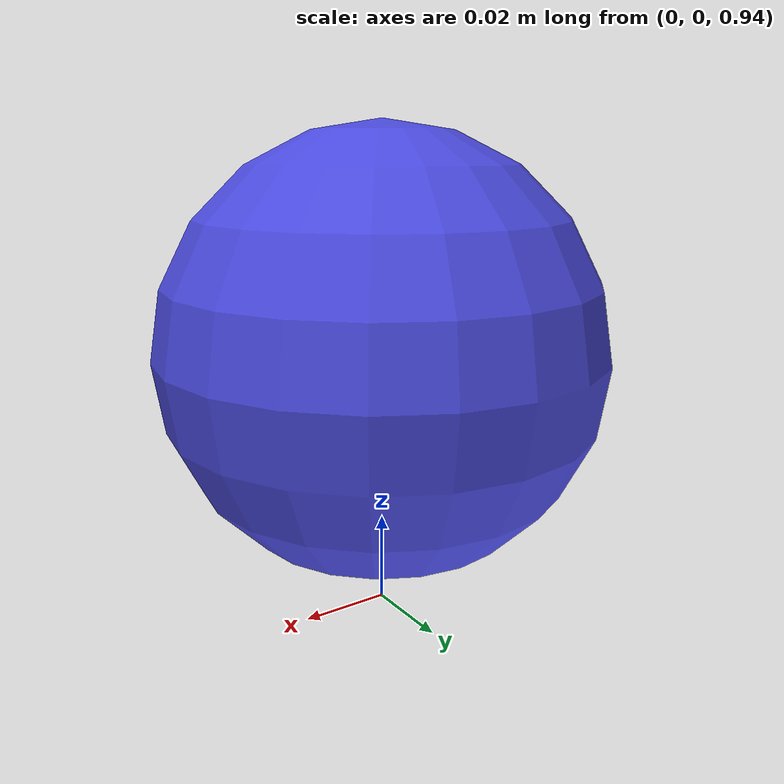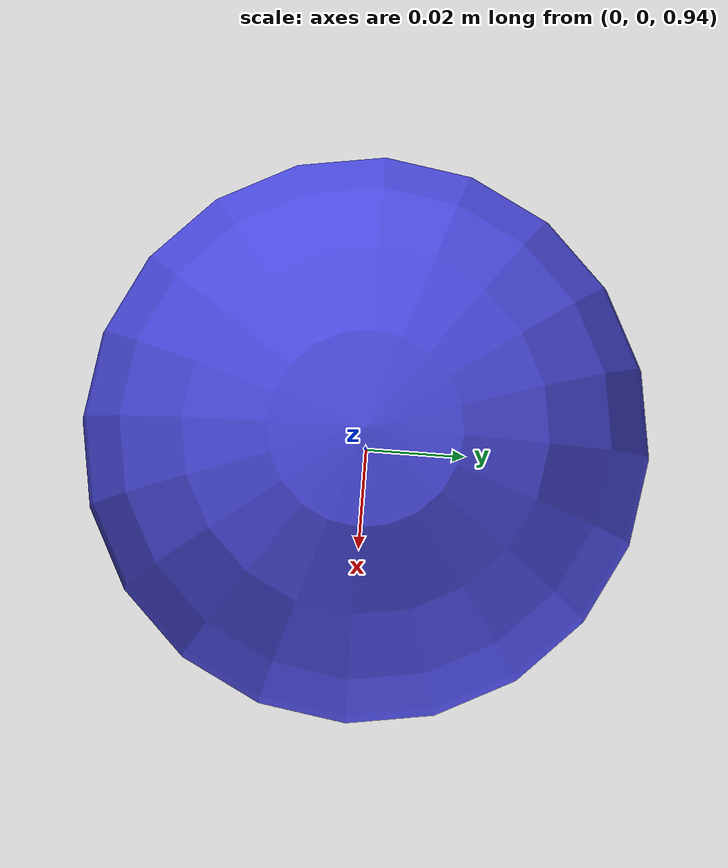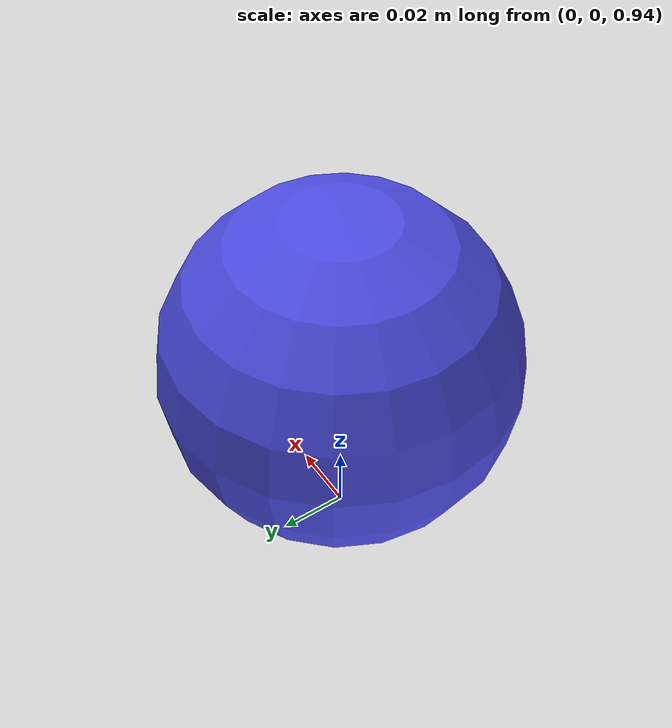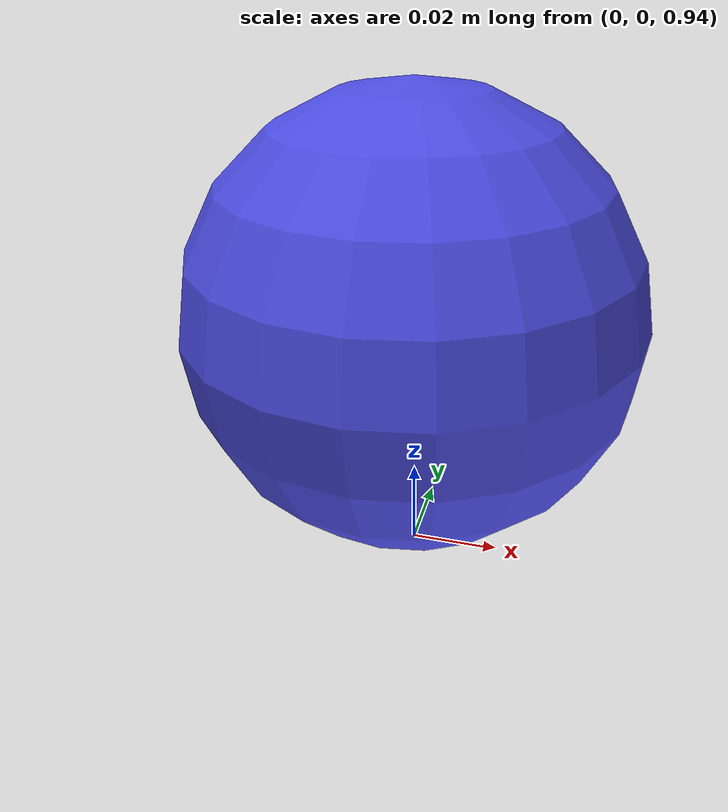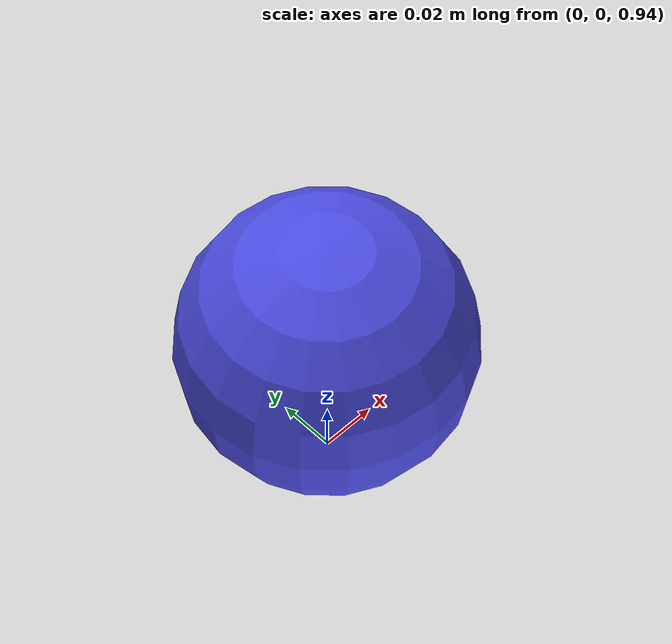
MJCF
<?xml version='1.0' encoding='utf-8'?>
<mujoco model="humanoid_263"><compiler angle="radian" coordinate="local" /><default><joint limited="false" damping="1" /><geom type="sphere" size="0.02" /></default><asset><texture name="tex" type="2d" builtin="checker" width="100" height="100" /><material name="mat" texture="tex" reflectance="0.2" /></asset><worldbody><body name="root" pos="0 0 1"><joint name="root_tx" type="slide" axis="1 0 0" /><joint name="root_ty" type="slide" axis="0 1 0" /><joint name="root_tz" type="slide" axis="0 0 1" /><geom name="root_geom" type="sphere" size="0.05" rgba="0.3 0.3 0.9 1" /><body name="j0" pos="0 0 0"><joint name="j0_x" type="slide" axis="1 0 0" /><joint name="j0_y" type="slide" axis="0 1 0" /><joint name="j0_z" type="slide" axis="0 0 1" /><geom name="j0_geom" type="sphere" size="0.02" rgba="0.8 0.3 0.3 1" /><body name="j1" pos="0 0 0"><joint name="j1_x" type="slide" axis="1 0 0" /><joint name="j1_y" type="slide" axis="0 1 0" /><joint name="j1_z" type="slide" axis="0 0 1" /><geom name="j1_geom" type="sphere" size="0.02" rgba="0.8 0.3 0.3 1" /><body name="j2" pos="0 0 0"><joint name="j2_x" type="slide" axis="1 0 0" /><joint name="j2_y" type="slide" axis="0 1 0" /><joint name="j2_z" type="slide" axis="0 0 1" /><geom name="j2_geom" type="sphere" size="0.02" rgba="0.8 0.3 0.3 1" /><body name="j3" pos="0 0 0"><joint name="j3_x" type="slide" axis="1 0 0" /><joint name="j3_y" type="slide" axis="0 1 0" /><joint name="j3_z" type="slide" axis="0 0 1" /><geom name="j3_geom" type="sphere" size="0.02" rgba="0.8 0.3 0.3 1" /><body name="j4" pos="0 0 0"><joint name="j4_x" type="slide" axis="1 0 0" /><joint name="j4_y" type="slide" axis="0 1 0" /><joint name="j4_z" type="slide" axis="0 0 1" /><geom name="j4_geom" type="sphere" size="0.02" rgba="0.8 0.3 0.3 1" /><body name="j5" pos="0 0 0"><joint name="j5_x" type="slide" axis="1 0 0" /><joint name="j5_y" type="slide" axis="0 1 0" /><joint name="j5_z" type="slide" axis="0 0 1" /><geom name="j5_geom" type="sphere" size="0.02" rgba="0.8 0.3 0.3 1" /><body name="j6" pos="0 0 0"><joint name="j6_x" type="slide" axis="1 0 0" /><joint name="j6_y" type="slide" axis="0 1 0" /><joint name="j6_z" type="slide" axis="0 0 1" /><geom name="j6_geom" type="sphere" size="0.02" rgba="0.8 0.3 0.3 1" /><body name="j7" pos="0 0 0"><joint name="j7_x" type="slide" axis="1 0 0" /><joint name="j7_y" type="slide" axis="0 1 0" /><joint name="j7_z" type="slide" axis="0 0 1" /><geom name="j7_geom" type="sphere" size="0.02" rgba="0.8 0.3 0.3 1" /><body name="j8" pos="0 0 0"><joint name="j8_x" type="slide" axis="1 0 0" /><joint name="j8_y" type="slide" axis="0 1 0" /><joint name="j8_z" type="slide" axis="0 0 1" /><geom name="j8_geom" type="sphere" size="0.02" rgba="0.8 0.3 0.3 1" /><body name="j9" pos="0 0 0"><joint name="j9_x" type="slide" axis="1 0 0" /><joint name="j9_y" type="slide" axis="0 1 0" /><joint name="j9_z" type="slide" axis="0 0 1" /><geom name="j9_geom" type="sphere" size="0.02" rgba="0.8 0.3 0.3 1" /><body name="j10" pos="0 0 0"><joint name="j10_x" type="slide" axis="1 0 0" /><joint name="j10_y" type="slide" axis="0 1 0" /><joint name="j10_z" type="slide" axis="0 0 1" /><geom name="j10_geom" type="sphere" size="0.02" rgba="0.8 0.3 0.3 1" /><body name="j11" pos="0 0 0"><joint name="j11_x" type="slide" axis="1 0 0" /><joint name="j11_y" type="slide" axis="0 1 0" /><joint name="j11_z" type="slide" axis="0 0 1" /><geom name="j11_geom" type="sphere" size="0.02" rgba="0.8 0.3 0.3 1" /><body name="j12" pos="0 0 0"><joint name="j12_x" type="slide" axis="1 0 0" /><joint name="j12_y" type="slide" axis="0 1 0" /><joint name="j12_z" type="slide" axis="0 0 1" /><geom name="j12_geom" type="sphere" size="0.02" rgba="0.8 0.3 0.3 1" /><body name="j13" pos="0 0 0"><joint name="j13_x" type="slide" axis="1 0 0" /><joint name="j13_y" type="slide" axis="0 1 0" /><joint name="j13_z" type="slide" axis="0 0 1" /><geom name="j13_geom" type="sphere" size="0.02" rgba="0.8 0.3 0.3 1" /><body name="j14" pos="0 0 0"><joint name="j14_x" type="slide" axis="1 0 0" /><joint name="j14_y" type="slide" axis="0 1 0" /><joint name="j14_z" type="slide" axis="0 0 1" /><geom name="j14_geom" type="sphere" size="0.02" rgba="0.8 0.3 0.3 1" /><body name="j15" pos="0 0 0"><joint name="j15_x" type="slide" axis="1 0 0" /><joint name="j15_y" type="slide" axis="0 1 0" /><joint name="j15_z" type="slide" axis="0 0 1" /><geom name="j15_geom" type="sphere" size="0.02" rgba="0.8 0.3 0.3 1" /><body name="j16" pos="0 0 0"><joint name="j16_x" type="slide" axis="1 0 0" /><joint name="j16_y" type="slide" axis="0 1 0" /><joint name="j16_z" type="slide" axis="0 0 1" /><geom name="j16_geom" type="sphere" size="0.02" rgba="0.8 0.3 0.3 1" /><body name="j17" pos="0 0 0"><joint name="j17_x" type="slide" axis="1 0 0" /><joint name="j17_y" type="slide" axis="0 1 0" /><joint name="j17_z" type="slide" axis="0 0 1" /><geom name="j17_geom" type="sphere" size="0.02" rgba="0.8 0.3 0.3 1" /><body name="j18" pos="0 0 0"><joint name="j18_x" type="slide" axis="1 0 0" /><joint name="j18_y" type="slide" axis="0 1 0" /><joint name="j18_z" type="slide" axis="0 0 1" /><geom name="j18_geom" type="sphere" size="0.02" rgba="0.8 0.3 0.3 1" /><body name="j19" pos="0 0 0"><joint name="j19_x" type="slide" axis="1 0 0" /><joint name="j19_y" type="slide" axis="0 1 0" /><joint name="j19_z" type="slide" axis="0 0 1" /><geom name="j19_geom" type="sphere" size="0.02" rgba="0.8 0.3 0.3 1" /><body name="j20" pos="0 0 0"><joint name="j20_x" type="slide" axis="1 0 0" /><joint name="j20_y" type="slide" axis="0 1 0" /><joint name="j20_z" type="slide" axis="0 0 1" /><geom name="j20_geom" type="sphere" size="0.02" rgba="0.8 0.3 0.3 1" /><body name="j21" pos="0 0 0"><joint name="j21_x" type="slide" axis="1 0 0" /><joint name="j21_y" type="slide" axis="0 1 0" /><joint name="j21_z" type="slide" axis="0 0 1" /><geom name="j21_geom" type="sphere" size="0.02" rgba="0.8 0.3 0.3 1" /><body name="j22" pos="0 0 0"><joint name="j22_x" type="slide" axis="1 0 0" /><joint name="j22_y" type="slide" axis="0 1 0" /><joint name="j22_z" type="slide" axis="0 0 1" /><geom name="j22_geom" type="sphere" size="0.02" rgba="0.8 0.3 0.3 1" /><body name="j23" pos="0 0 0"><joint name="j23_x" type="slide" axis="1 0 0" /><joint name="j23_y" type="slide" axis="0 1 0" /><joint name="j23_z" type="slide" axis="0 0 1" /><geom name="j23_geom" type="sphere" size="0.02" rgba="0.8 0.3 0.3 1" /><body name="j24" pos="0 0 0"><joint name="j24_x" type="slide" axis="1 0 0" /><joint name="j24_y" type="slide" axis="0 1 0" /><joint name="j24_z" type="slide" axis="0 0 1" /><geom name="j24_geom" type="sphere" size="0.02" rgba="0.8 0.3 0.3 1" /><body name="j25" pos="0 0 0"><joint name="j25_x" type="slide" axis="1 0 0" /><joint name="j25_y" type="slide" axis="0 1 0" /><joint name="j25_z" type="slide" axis="0 0 1" /><geom name="j25_geom" type="sphere" size="0.02" rgba="0.8 0.3 0.3 1" /><body name="j26" pos="0 0 0"><joint name="j26_x" type="slide" axis="1 0 0" /><joint name="j26_y" type="slide" axis="0 1 0" /><joint name="j26_z" type="slide" axis="0 0 1" /><geom name="j26_geom" type="sphere" size="0.02" rgba="0.8 0.3 0.3 1" /><body name="j27" pos="0 0 0"><joint name="j27_x" type="slide" axis="1 0 0" /><joint name="j27_y" type="slide" axis="0 1 0" /><joint name="j27_z" type="slide" axis="0 0 1" /><geom name="j27_geom" type="sphere" size="0.02" rgba="0.8 0.3 0.3 1" /><body name="j28" pos="0 0 0"><joint name="j28_x" type="slide" axis="1 0 0" /><joint name="j28_y" type="slide" axis="0 1 0" /><joint name="j28_z" type="slide" axis="0 0 1" /><geom name="j28_geom" type="sphere" size="0.02" rgba="0.8 0.3 0.3 1" /><body name="j29" pos="0 0 0"><joint name="j29_x" type="slide" axis="1 0 0" /><joint name="j29_y" type="slide" axis="0 1 0" /><joint name="j29_z" type="slide" axis="0 0 1" /><geom name="j29_geom" type="sphere" size="0.02" rgba="0.8 0.3 0.3 1" /><body name="j30" pos="0 0 0"><joint name="j30_x" type="slide" axis="1 0 0" /><joint name="j30_y" type="slide" axis="0 1 0" /><joint name="j30_z" type="slide" axis="0 0 1" /><geom name="j30_geom" type="sphere" size="0.02" rgba="0.8 0.3 0.3 1" /><body name="j31" pos="0 0 0"><joint name="j31_x" type="slide" axis="1 0 0" /><joint name="j31_y" type="slide" axis="0 1 0" /><joint name="j31_z" type="slide" axis="0 0 1" /><geom name="j31_geom" type="sphere" size="0.02" rgba="0.8 0.3 0.3 1" /><body name="j32" pos="0 0 0"><joint name="j32_x" type="slide" axis="1 0 0" /><joint name="j32_y" type="slide" axis="0 1 0" /><joint name="j32_z" type="slide" axis="0 0 1" /><geom name="j32_geom" type="sphere" size="0.02" rgba="0.8 0.3 0.3 1" /><body name="j33" pos="0 0 0"><joint name="j33_x" type="slide" axis="1 0 0" /><joint name="j33_y" type="slide" axis="0 1 0" /><joint name="j33_z" type="slide" axis="0 0 1" /><geom name="j33_geom" type="sphere" size="0.02" rgba="0.8 0.3 0.3 1" /><body name="j34" pos="0 0 0"><joint name="j34_x" type="slide" axis="1 0 0" /><joint name="j34_y" type="slide" axis="0 1 0" /><joint name="j34_z" type="slide" axis="0 0 1" /><geom name="j34_geom" type="sphere" size="0.02" rgba="0.8 0.3 0.3 1" /><body name="j35" pos="0 0 0"><joint name="j35_x" type="slide" axis="1 0 0" /><joint name="j35_y" type="slide" axis="0 1 0" /><joint name="j35_z" type="slide" axis="0 0 1" /><geom name="j35_geom" type="sphere" size="0.02" rgba="0.8 0.3 0.3 1" /><body name="j36" pos="0 0 0"><joint name="j36_x" type="slide" axis="1 0 0" /><joint name="j36_y" type="slide" axis="0 1 0" /><joint name="j36_z" type="slide" axis="0 0 1" /><geom name="j36_geom" type="sphere" size="0.02" rgba="0.8 0.3 0.3 1" /><body name="j37" pos="0 0 0"><joint name="j37_x" type="slide" axis="1 0 0" /><joint name="j37_y" type="slide" axis="0 1 0" /><joint name="j37_z" type="slide" axis="0 0 1" /><geom name="j37_geom" type="sphere" size="0.02" rgba="0.8 0.3 0.3 1" /><body name="j38" pos="0 0 0"><joint name="j38_x" type="slide" axis="1 0 0" /><joint name="j38_y" type="slide" axis="0 1 0" /><joint name="j38_z" type="slide" axis="0 0 1" /><geom name="j38_geom" type="sphere" size="0.02" rgba="0.8 0.3 0.3 1" /><body name="j39" pos="0 0 0"><joint name="j39_x" type="slide" axis="1 0 0" /><joint name="j39_y" type="slide" axis="0 1 0" /><joint name="j39_z" type="slide" axis="0 0 1" /><geom name="j39_geom" type="sphere" size="0.02" rgba="0.8 0.3 0.3 1" /><body name="j40" pos="0 0 0"><joint name="j40_x" type="slide" axis="1 0 0" /><joint name="j40_y" type="slide" axis="0 1 0" /><joint name="j40_z" type="slide" axis="0 0 1" /><geom name="j40_geom" type="sphere" size="0.02" rgba="0.8 0.3 0.3 1" /><body name="j41" pos="0 0 0"><joint name="j41_x" type="slide" axis="1 0 0" /><joint name="j41_y" type="slide" axis="0 1 0" /><joint name="j41_z" type="slide" axis="0 0 1" /><geom name="j41_geom" type="sphere" size="0.02" rgba="0.8 0.3 0.3 1" /><body name="j42" pos="0 0 0"><joint name="j42_x" type="slide" axis="1 0 0" /><joint name="j42_y" type="slide" axis="0 1 0" /><joint name="j42_z" type="slide" axis="0 0 1" /><geom name="j42_geom" type="sphere" size="0.02" rgba="0.8 0.3 0.3 1" /><body name="j43" pos="0 0 0"><joint name="j43_x" type="slide" axis="1 0 0" /><joint name="j43_y" type="slide" axis="0 1 0" /><joint name="j43_z" type="slide" axis="0 0 1" /><geom name="j43_geom" type="sphere" size="0.02" rgba="0.8 0.3 0.3 1" /><body name="j44" pos="0 0 0"><joint name="j44_x" type="slide" axis="1 0 0" /><joint name="j44_y" type="slide" axis="0 1 0" /><joint name="j44_z" type="slide" axis="0 0 1" /><geom name="j44_geom" type="sphere" size="0.02" rgba="0.8 0.3 0.3 1" /><body name="j45" pos="0 0 0"><joint name="j45_x" type="slide" axis="1 0 0" /><joint name="j45_y" type="slide" axis="0 1 0" /><joint name="j45_z" type="slide" axis="0 0 1" /><geom name="j45_geom" type="sphere" size="0.02" rgba="0.8 0.3 0.3 1" /><body name="j46" pos="0 0 0"><joint name="j46_x" type="slide" axis="1 0 0" /><joint name="j46_y" type="slide" axis="0 1 0" /><joint name="j46_z" type="slide" axis="0 0 1" /><geom name="j46_geom" type="sphere" size="0.02" rgba="0.8 0.3 0.3 1" /><body name="j47" pos="0 0 0"><joint name="j47_x" type="slide" axis="1 0 0" /><joint name="j47_y" type="slide" axis="0 1 0" /><joint name="j47_z" type="slide" axis="0 0 1" /><geom name="j47_geom" type="sphere" size="0.02" rgba="0.8 0.3 0.3 1" /><body name="j48" pos="0 0 0"><joint name="j48_x" type="slide" axis="1 0 0" /><joint name="j48_y" type="slide" axis="0 1 0" /><joint name="j48_z" type="slide" axis="0 0 1" /><geom name="j48_geom" type="sphere" size="0.02" rgba="0.8 0.3 0.3 1" /><body name="j49" pos="0 0 0"><joint name="j49_x" type="slide" axis="1 0 0" /><joint name="j49_y" type="slide" axis="0 1 0" /><joint name="j49_z" type="slide" axis="0 0 1" /><geom name="j49_geom" type="sphere" size="0.02" rgba="0.8 0.3 0.3 1" /><body name="j50" pos="0 0 0"><joint name="j50_x" type="slide" axis="1 0 0" /><joint name="j50_y" type="slide" axis="0 1 0" /><joint name="j50_z" type="slide" axis="0 0 1" /><geom name="j50_geom" type="sphere" size="0.02" rgba="0.8 0.3 0.3 1" /><body name="j51" pos="0 0 0"><joint name="j51_x" type="slide" axis="1 0 0" /><joint name="j51_y" type="slide" axis="0 1 0" /><joint name="j51_z" type="slide" axis="0 0 1" /><geom name="j51_geom" type="sphere" size="0.02" rgba="0.8 0.3 0.3 1" /><body name="j52" pos="0 0 0"><joint name="j52_x" type="slide" axis="1 0 0" /><joint name="j52_y" type="slide" axis="0 1 0" /><joint name="j52_z" type="slide" axis="0 0 1" /><geom name="j52_geom" type="sphere" size="0.02" rgba="0.8 0.3 0.3 1" /><body name="j53" pos="0 0 0"><joint name="j53_x" type="slide" axis="1 0 0" /><joint name="j53_y" type="slide" axis="0 1 0" /><joint name="j53_z" type="slide" axis="0 0 1" /><geom name="j53_geom" type="sphere" size="0.02" rgba="0.8 0.3 0.3 1" /><body name="j54" pos="0 0 0"><joint name="j54_x" type="slide" axis="1 0 0" /><joint name="j54_y" type="slide" axis="0 1 0" /><joint name="j54_z" type="slide" axis="0 0 1" /><geom name="j54_geom" type="sphere" size="0.02" rgba="0.8 0.3 0.3 1" /><body name="j55" pos="0 0 0"><joint name="j55_x" type="slide" axis="1 0 0" /><joint name="j55_y" type="slide" axis="0 1 0" /><joint name="j55_z" type="slide" axis="0 0 1" /><geom name="j55_geom" type="sphere" size="0.02" rgba="0.8 0.3 0.3 1" /><body name="j56" pos="0 0 0"><joint name="j56_x" type="slide" axis="1 0 0" /><joint name="j56_y" type="slide" axis="0 1 0" /><joint name="j56_z" type="slide" axis="0 0 1" /><geom name="j56_geom" type="sphere" size="0.02" rgba="0.8 0.3 0.3 1" /><body name="j57" pos="0 0 0"><joint name="j57_x" type="slide" axis="1 0 0" /><joint name="j57_y" type="slide" axis="0 1 0" /><joint name="j57_z" type="slide" axis="0 0 1" /><geom name="j57_geom" type="sphere" size="0.02" rgba="0.8 0.3 0.3 1" /><body name="j58" pos="0 0 0"><joint name="j58_x" type="slide" axis="1 0 0" /><joint name="j58_y" type="slide" axis="0 1 0" /><joint name="j58_z" type="slide" axis="0 0 1" /><geom name="j58_geom" type="sphere" size="0.02" rgba="0.8 0.3 0.3 1" /><body name="j59" pos="0 0 0"><joint name="j59_x" type="slide" axis="1 0 0" /><joint name="j59_y" type="slide" axis="0 1 0" /><joint name="j59_z" type="slide" axis="0 0 1" /><geom name="j59_geom" type="sphere" size="0.02" rgba="0.8 0.3 0.3 1" /><body name="j60" pos="0 0 0"><joint name="j60_x" type="slide" axis="1 0 0" /><joint name="j60_y" type="slide" axis="0 1 0" /><joint name="j60_z" type="slide" axis="0 0 1" /><geom name="j60_geom" type="sphere" size="0.02" rgba="0.8 0.3 0.3 1" /><body name="j61" pos="0 0 0"><joint name="j61_x" type="slide" axis="1 0 0" /><joint name="j61_y" type="slide" axis="0 1 0" /><joint name="j61_z" type="slide" axis="0 0 1" /><geom name="j61_geom" type="sphere" size="0.02" rgba="0.8 0.3 0.3 1" /><body name="j62" pos="0 0 0"><joint name="j62_x" type="slide" axis="1 0 0" /><joint name="j62_y" type="slide" axis="0 1 0" /><joint name="j62_z" type="slide" axis="0 0 1" /><geom name="j62_geom" type="sphere" size="0.02" rgba="0.8 0.3 0.3 1" /><body name="j63" pos="0 0 0"><joint name="j63_x" type="slide" axis="1 0 0" /><joint name="j63_y" type="slide" axis="0 1 0" /><joint name="j63_z" type="slide" axis="0 0 1" /><geom name="j63_geom" type="sphere" size="0.02" rgba="0.8 0.3 0.3 1" /><body name="j64" pos="0 0 0"><joint name="j64_x" type="slide" axis="1 0 0" /><joint name="j64_y" type="slide" axis="0 1 0" /><joint name="j64_z" type="slide" axis="0 0 1" /><geom name="j64_geom" type="sphere" size="0.02" rgba="0.8 0.3 0.3 1" /><body name="j65" pos="0 0 0"><joint name="j65_x" type="slide" axis="1 0 0" /><joint name="j65_y" type="slide" axis="0 1 0" /><joint name="j65_z" type="slide" axis="0 0 1" /><geom name="j65_geom" type="sphere" size="0.02" rgba="0.8 0.3 0.3 1" /><body name="j66" pos="0 0 0"><joint name="j66_x" type="slide" axis="1 0 0" /><joint name="j66_y" type="slide" axis="0 1 0" /><joint name="j66_z" type="slide" axis="0 0 1" /><geom name="j66_geom" type="sphere" size="0.02" rgba="0.8 0.3 0.3 1" /><body name="j67" pos="0 0 0"><joint name="j67_x" type="slide" axis="1 0 0" /><joint name="j67_y" type="slide" axis="0 1 0" /><joint name="j67_z" type="slide" axis="0 0 1" /><geom name="j67_geom" type="sphere" size="0.02" rgba="0.8 0.3 0.3 1" /><body name="j68" pos="0 0 0"><joint name="j68_x" type="slide" axis="1 0 0" /><joint name="j68_y" type="slide" axis="0 1 0" /><joint name="j68_z" type="slide" axis="0 0 1" /><geom name="j68_geom" type="sphere" size="0.02" rgba="0.8 0.3 0.3 1" /><body name="j69" pos="0 0 0"><joint name="j69_x" type="slide" axis="1 0 0" /><joint name="j69_y" type="slide" axis="0 1 0" /><joint name="j69_z" type="slide" axis="0 0 1" /><geom name="j69_geom" type="sphere" size="0.02" rgba="0.8 0.3 0.3 1" /><body name="j70" pos="0 0 0"><joint name="j70_x" type="slide" axis="1 0 0" /><joint name="j70_y" type="slide" axis="0 1 0" /><joint name="j70_z" type="slide" axis="0 0 1" /><geom name="j70_geom" type="sphere" size="0.02" rgba="0.8 0.3 0.3 1" /><body name="j71" pos="0 0 0"><joint name="j71_x" type="slide" axis="1 0 0" /><joint name="j71_y" type="slide" axis="0 1 0" /><joint name="j71_z" type="slide" axis="0 0 1" /><geom name="j71_geom" type="sphere" size="0.02" rgba="0.8 0.3 0.3 1" /><body name="j72" pos="0 0 0"><joint name="j72_x" type="slide" axis="1 0 0" /><joint name="j72_y" type="slide" axis="0 1 0" /><joint name="j72_z" type="slide" axis="0 0 1" /><geom name="j72_geom" type="sphere" size="0.02" rgba="0.8 0.3 0.3 1" /><body name="j73" pos="0 0 0"><joint name="j73_x" type="slide" axis="1 0 0" /><joint name="j73_y" type="slide" axis="0 1 0" /><joint name="j73_z" type="slide" axis="0 0 1" /><geom name="j73_geom" type="sphere" size="0.02" rgba="0.8 0.3 0.3 1" /><body name="j74" pos="0 0 0"><joint name="j74_x" type="slide" axis="1 0 0" /><joint name="j74_y" type="slide" axis="0 1 0" /><joint name="j74_z" type="slide" axis="0 0 1" /><geom name="j74_geom" type="sphere" size="0.02" rgba="0.8 0.3 0.3 1" /><body name="j75" pos="0 0 0"><joint name="j75_x" type="slide" axis="1 0 0" /><joint name="j75_y" type="slide" axis="0 1 0" /><joint name="j75_z" type="slide" axis="0 0 1" /><geom name="j75_geom" type="sphere" size="0.02" rgba="0.8 0.3 0.3 1" /><body name="j76" pos="0 0 0"><joint name="j76_x" type="slide" axis="1 0 0" /><joint name="j76_y" type="slide" axis="0 1 0" /><joint name="j76_z" type="slide" axis="0 0 1" /><geom name="j76_geom" type="sphere" size="0.02" rgba="0.8 0.3 0.3 1" /><body name="j77" pos="0 0 0"><joint name="j77_x" type="slide" axis="1 0 0" /><joint name="j77_y" type="slide" axis="0 1 0" /><joint name="j77_z" type="slide" axis="0 0 1" /><geom name="j77_geom" type="sphere" size="0.02" rgba="0.8 0.3 0.3 1" /><body name="j78" pos="0 0 0"><joint name="j78_x" type="slide" axis="1 0 0" /><joint name="j78_y" type="slide" axis="0 1 0" /><joint name="j78_z" type="slide" axis="0 0 1" /><geom name="j78_geom" type="sphere" size="0.02" rgba="0.8 0.3 0.3 1" /><body name="j79" pos="0 0 0"><joint name="j79_x" type="slide" axis="1 0 0" /><joint name="j79_y" type="slide" axis="0 1 0" /><joint name="j79_z" type="slide" axis="0 0 1" /><geom name="j79_geom" type="sphere" size="0.02" rgba="0.8 0.3 0.3 1" /><body name="j80" pos="0 0 0"><joint name="j80_x" type="slide" axis="1 0 0" /><joint name="j80_y" type="slide" axis="0 1 0" /><joint name="j80_z" type="slide" axis="0 0 1" /><geom name="j80_geom" type="sphere" size="0.02" rgba="0.8 0.3 0.3 1" /><body name="j81" pos="0 0 0"><joint name="j81_x" type="slide" axis="1 0 0" /><joint name="j81_y" type="slide" axis="0 1 0" /><joint name="j81_z" type="slide" axis="0 0 1" /><geom name="j81_geom" type="sphere" size="0.02" rgba="0.8 0.3 0.3 1" /><body name="j82" pos="0 0 0"><joint name="j82_x" type="slide" axis="1 0 0" /><joint name="j82_y" type="slide" axis="0 1 0" /><joint name="j82_z" type="slide" axis="0 0 1" /><geom name="j82_geom" type="sphere" size="0.02" rgba="0.8 0.3 0.3 1" /><body name="j83" pos="0 0 0"><joint name="j83_x" type="slide" axis="1 0 0" /><joint name="j83_y" type="slide" axis="0 1 0" /><joint name="j83_z" type="slide" axis="0 0 1" /><geom name="j83_geom" type="sphere" size="0.02" rgba="0.8 0.3 0.3 1" /><body name="j84" pos="0 0 0"><joint name="j84_x" type="slide" axis="1 0 0" /><joint name="j84_y" type="slide" axis="0 1 0" /><joint name="j84_z" type="slide" axis="0 0 1" /><geom name="j84_geom" type="sphere" size="0.02" rgba="0.8 0.3 0.3 1" /><body name="j85" pos="0 0 0"><joint name="j85_x" type="slide" axis="1 0 0" /><joint name="j85_y" type="slide" axis="0 1 0" /><joint name="j85_z" type="slide" axis="0 0 1" /><geom name="j85_geom" type="sphere" size="0.02" rgba="0.8 0.3 0.3 1" /><body name="j86" pos="0 0 0"><joint name="j86_x" type="slide" axis="1 0 0" /><joint name="j86_y" type="slide" axis="0 1 0" /><joint name="j86_z" type="slide" axis="0 0 1" /><geom name="j86_geom" type="sphere" size="0.02" rgba="0.8 0.3 0.3 1" /></body></body></body></body></body></body></body></body></body></body></body></body></body></body></body></body></body></body></body></body></body></body></body></body></body></body></body></body></body></body></body></body></body></body></body></body></body></body></body></body></body></body></body></body></body></body></body></body></body></body></body></body></body></body></body></body></body></body></body></body></body></body></body></body></body></body></body></body></body></body></body></body></body></body></body></body></body></body></body></body></body></body></body></body></body></body></body></body></worldbody></mujoco>
